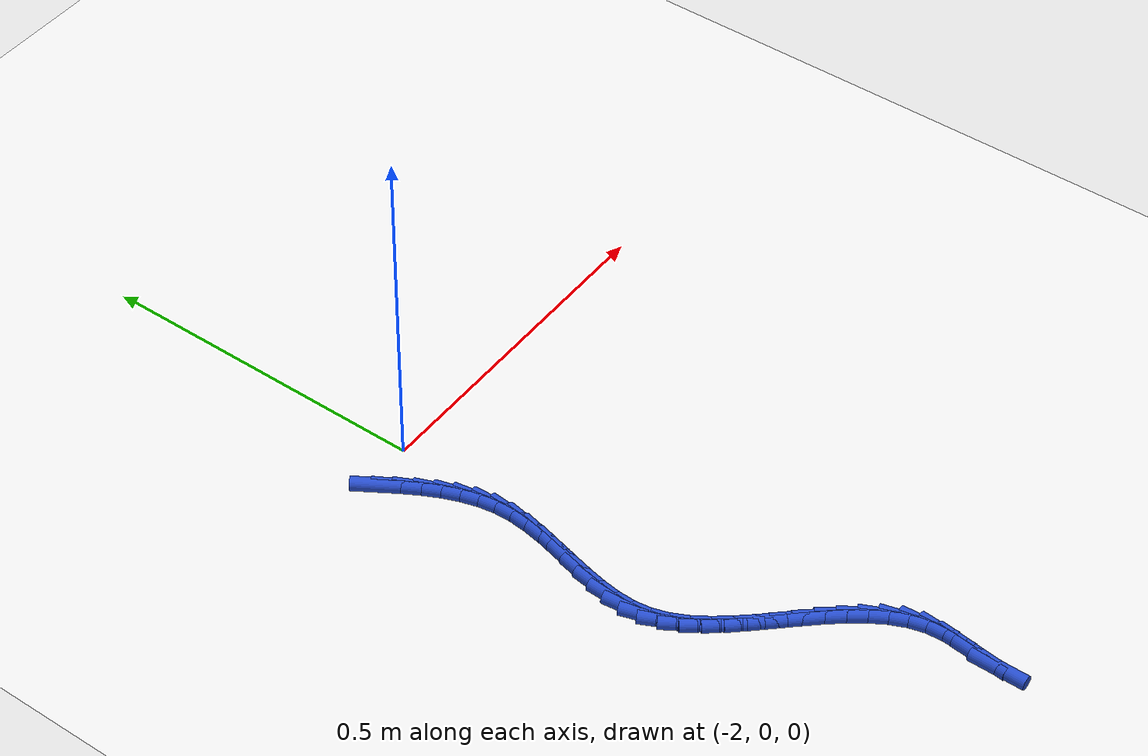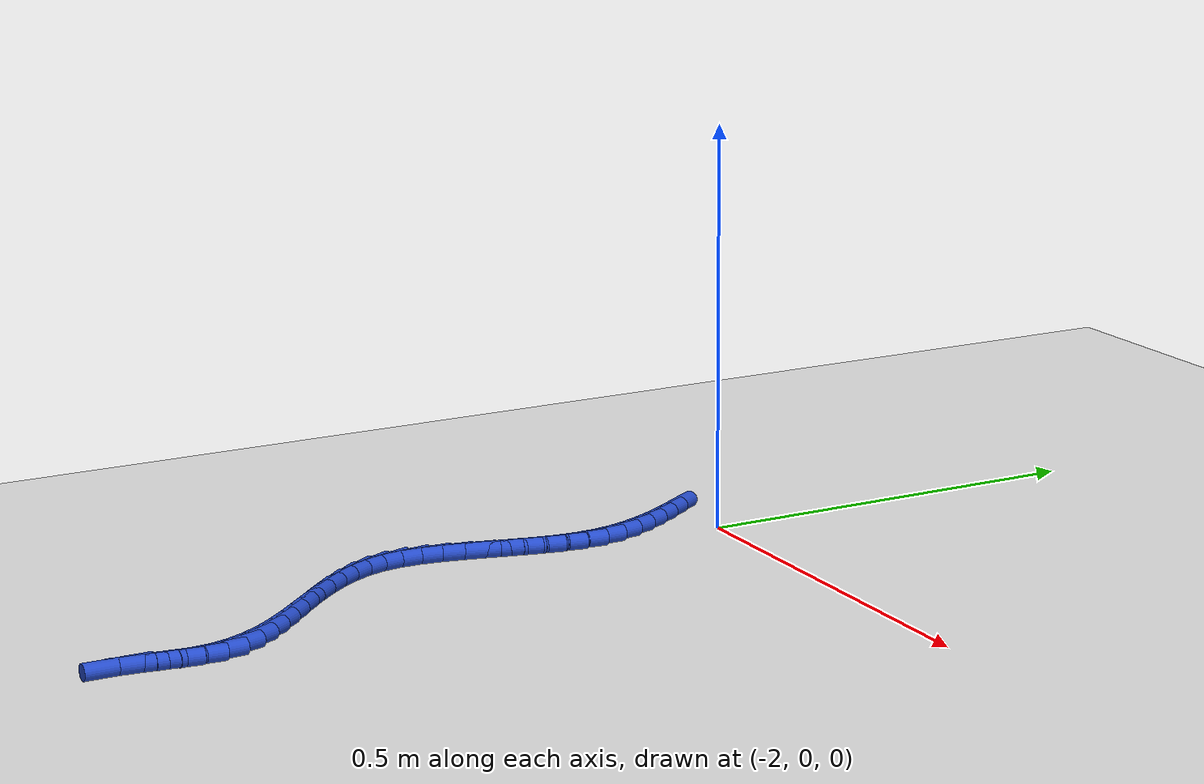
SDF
<sdf version="1.6">
 <world name="default">
  <model name="ground_plane">
   <static>1</static>
   <link name="link">
    <collision name="collision">
     <geometry><plane><normal>0 0 1</normal><size>100 100</size></plane></geometry>
     <surface><friction><ode><mu>100</mu><mu2>50</mu2></ode></friction></surface>
    </collision>
    <visual name="visual">
     <cast_shadows>0</cast_shadows>
     <geometry><plane><normal>0 0 1</normal><size>100 100</size></plane></geometry>
     <material>
      <script><uri>file://media/materials/scripts/gazebo.material</uri><name>Gazebo/WhiteGlow</name></script>
     </material>
    </visual>
   </link>
  </model>
  <model name="line">
   <link name="link_135">
    <pose>-2.072716898171378 -0.01903713610280499 0.01 0 1.57 -1.0054330299117158</pose>
    <collision name="collision">
     <geometry><cylinder><radius>0.01</radius><length>0.08</length></cylinder></geometry>
    </collision>
    <visual name="visual">
     <material>
      <script><name>Gazebo/Blue</name><uri>file://media/materials/scripts/gazebo.material</uri></script>
     </material>
     <geometry><cylinder><radius>0.01</radius><length>0.08</length></cylinder></geometry>
    </visual>
   </link>
   <link name="link_136">
    <pose>-2.057754793030776 -0.042620072217774814 0.01 0 1.57 -1.0477233923292828</pose>
    <collision name="collision">
     <geometry><cylinder><radius>0.01</radius><length>0.08</length></cylinder></geometry>
    </collision>
    <visual name="visual">
     <material>
      <script><name>Gazebo/Blue</name><uri>file://media/materials/scripts/gazebo.material</uri></script>
     </material>
     <geometry><cylinder><radius>0.01</radius><length>0.08</length></cylinder></geometry>
    </visual>
   </link>
   <link name="link_137">
    <pose>-2.044021600746991 -0.06643557124840849 0.01 0 1.57 -1.1080512836600593</pose>
    <collision name="collision">
     <geometry><cylinder><radius>0.01</radius><length>0.08</length></cylinder></geometry>
    </collision>
    <visual name="visual">
     <material>
      <script><name>Gazebo/Blue</name><uri>file://media/materials/scripts/gazebo.material</uri></script>
     </material>
     <geometry><cylinder><radius>0.01</radius><length>0.08</length></cylinder></geometry>
    </visual>
   </link>
   <link name="link_138">
    <pose>-2.0319880232883003 -0.09055712986771021 0.01 0 1.57 -1.188081776818659</pose>
    <collision name="collision">
     <geometry><cylinder><radius>0.01</radius><length>0.08</length></cylinder></geometry>
    </collision>
    <visual name="visual">
     <material>
      <script><name>Gazebo/Blue</name><uri>file://media/materials/scripts/gazebo.material</uri></script>
     </material>
     <geometry><cylinder><radius>0.01</radius><length>0.08</length></cylinder></geometry>
    </visual>
   </link>
   <link name="link_139">
    <pose>-2.0221247626229815 -0.11505824474868123 0.01 0 1.57 -1.289073747721306</pose>
    <collision name="collision">
     <geometry><cylinder><radius>0.01</radius><length>0.08</length></cylinder></geometry>
    </collision>
    <visual name="visual">
     <material>
      <script><name>Gazebo/Blue</name><uri>file://media/materials/scripts/gazebo.material</uri></script>
     </material>
     <geometry><cylinder><radius>0.01</radius><length>0.08</length></cylinder></geometry>
    </visual>
   </link>
   <link name="link_140">
    <pose>-2.0149025207193128 -0.14001241256432498 0.01 0 1.57 -1.4108553559786603</pose>
    <collision name="collision">
     <geometry><cylinder><radius>0.01</radius><length>0.08</length></cylinder></geometry>
    </collision>
    <visual name="visual">
     <material>
      <script><name>Gazebo/Blue</name><uri>file://media/materials/scripts/gazebo.material</uri></script>
     </material>
     <geometry><cylinder><radius>0.01</radius><length>0.08</length></cylinder></geometry>
    </visual>
   </link>
   <link name="link_141">
    <pose>-2.010791999545571 -0.16549312998764493 0.01 0 1.57 -1.5485861318909557</pose>
    <collision name="collision">
     <geometry><cylinder><radius>0.01</radius><length>0.08</length></cylinder></geometry>
    </collision>
    <visual name="visual">
     <material>
      <script><name>Gazebo/Blue</name><uri>file://media/materials/scripts/gazebo.material</uri></script>
     </material>
     <geometry><cylinder><radius>0.01</radius><length>0.08</length></cylinder></geometry>
    </visual>
   </link>
   <link name="link_142">
    <pose>-2.010212849089944 -0.19156472570114025 0.01 0 1.57 1.4719913664019857</pose>
    <collision name="collision">
     <geometry><cylinder><radius>0.01</radius><length>0.08</length></cylinder></geometry>
    </collision>
    <visual name="visual">
     <material>
      <script><name>Gazebo/Blue</name><uri>file://media/materials/scripts/gazebo.material</uri></script>
     </material>
     <geometry><cylinder><radius>0.01</radius><length>0.08</length></cylinder></geometry>
    </visual>
   </link>
   <link name="link_143">
    <pose>-2.0128491220597575 -0.21815942873373748 0.01 0 1.57 1.3879470591012573</pose>
    <collision name="collision">
     <geometry><cylinder><radius>0.01</radius><length>0.08</length></cylinder></geometry>
    </collision>
    <visual name="visual">
     <material>
      <script><name>Gazebo/Blue</name><uri>file://media/materials/scripts/gazebo.material</uri></script>
     </material>
     <geometry><cylinder><radius>0.01</radius><length>0.08</length></cylinder></geometry>
    </visual>
   </link>
   <link name="link_144">
    <pose>-2.017832736541385 -0.24511031495807142 0.01 0 1.57 1.337468236158817</pose>
    <collision name="collision">
     <geometry><cylinder><radius>0.01</radius><length>0.08</length></cylinder></geometry>
    </collision>
    <visual name="visual">
     <material>
      <script><name>Gazebo/Blue</name><uri>file://media/materials/scripts/gazebo.material</uri></script>
     </material>
     <geometry><cylinder><radius>0.01</radius><length>0.08</length></cylinder></geometry>
    </visual>
   </link>
   <link name="link_145">
    <pose>-2.024282200495106 -0.2722480520363942 0.01 0 1.57 1.3173441189196604</pose>
    <collision name="collision">
     <geometry><cylinder><radius>0.01</radius><length>0.08</length></cylinder></geometry>
    </collision>
    <visual name="visual">
     <material>
      <script><name>Gazebo/Blue</name><uri>file://media/materials/scripts/gazebo.material</uri></script>
     </material>
     <geometry><cylinder><radius>0.01</radius><length>0.08</length></cylinder></geometry>
    </visual>
   </link>
   <link name="link_146">
    <pose>-2.0313160218811994 -0.2994033076309544 0.01 0 1.57 1.3263117327680018</pose>
    <collision name="collision">
     <geometry><cylinder><radius>0.01</radius><length>0.08</length></cylinder></geometry>
    </collision>
    <visual name="visual">
     <material>
      <script><name>Gazebo/Blue</name><uri>file://media/materials/scripts/gazebo.material</uri></script>
     </material>
     <geometry><cylinder><radius>0.01</radius><length>0.08</length></cylinder></geometry>
    </visual>
   </link>
   <link name="link_147">
    <pose>-2.0380527086599423 -0.326406749404004 0.01 0 1.57 1.3654279292885447</pose>
    <collision name="collision">
     <geometry><cylinder><radius>0.01</radius><length>0.08</length></cylinder></geometry>
    </collision>
    <visual name="visual">
     <material>
      <script><name>Gazebo/Blue</name><uri>file://media/materials/scripts/gazebo.material</uri></script>
     </material>
     <geometry><cylinder><radius>0.01</radius><length>0.08</length></cylinder></geometry>
    </visual>
   </link>
   <link name="link_148">
    <pose>-2.0436107687916136 -0.35308904501779176 0.01 0 1.57 1.4380310080998988</pose>
    <collision name="collision">
     <geometry><cylinder><radius>0.01</radius><length>0.08</length></cylinder></geometry>
    </collision>
    <visual name="visual">
     <material>
      <script><name>Gazebo/Blue</name><uri>file://media/materials/scripts/gazebo.material</uri></script>
     </material>
     <geometry><cylinder><radius>0.01</radius><length>0.08</length></cylinder></geometry>
    </visual>
   </link>
   <link name="link_149">
    <pose>-2.0471087102364915 -0.37928086213456974 0.01 0 1.57 1.5490102324462334</pose>
    <collision name="collision">
     <geometry><cylinder><radius>0.01</radius><length>0.08</length></cylinder></geometry>
    </collision>
    <visual name="visual">
     <material>
      <script><name>Gazebo/Blue</name><uri>file://media/materials/scripts/gazebo.material</uri></script>
     </material>
     <geometry><cylinder><radius>0.01</radius><length>0.08</length></cylinder></geometry>
    </visual>
   </link>
   <link name="link_150">
    <pose>-2.047665040954855 -0.40481286841658654 0.01 0 1.57 -1.439319601535702</pose>
    <collision name="collision">
     <geometry><cylinder><radius>0.01</radius><length>0.08</length></cylinder></geometry>
    </collision>
    <visual name="visual">
     <material>
      <script><name>Gazebo/Blue</name><uri>file://media/materials/scripts/gazebo.material</uri></script>
     </material>
     <geometry><cylinder><radius>0.01</radius><length>0.08</length></cylinder></geometry>
    </visual>
   </link>
   <link name="link_151">
    <pose>-2.044398342859905 -0.4295157464807639 0.01 0 1.57 -1.2594936511124182</pose>
    <collision name="collision">
     <geometry><cylinder><radius>0.01</radius><length>0.08</length></cylinder></geometry>
    </collision>
    <visual name="visual">
     <material>
      <script><name>Gazebo/Blue</name><uri>file://media/materials/scripts/gazebo.material</uri></script>
     </material>
     <geometry><cylinder><radius>0.01</radius><length>0.08</length></cylinder></geometry>
    </visual>
   </link>
   <link name="link_152">
    <pose>-2.0367500896820774 -0.4532854737356481 0.01 0 1.57 -1.1053584522269329</pose>
    <collision name="collision">
     <geometry><cylinder><radius>0.01</radius><length>0.08</length></cylinder></geometry>
    </collision>
    <visual name="visual">
     <material>
      <script><name>Gazebo/Blue</name><uri>file://media/materials/scripts/gazebo.material</uri></script>
     </material>
     <geometry><cylinder><radius>0.01</radius><length>0.08</length></cylinder></geometry>
    </visual>
   </link>
   <link name="link_153">
    <pose>-2.025224918172634 -0.47623301912627464 0.01 0 1.57 -0.9882424755647025</pose>
    <collision name="collision">
     <geometry><cylinder><radius>0.01</radius><length>0.08</length></cylinder></geometry>
    </collision>
    <visual name="visual">
     <material>
      <script><name>Gazebo/Blue</name><uri>file://media/materials/scripts/gazebo.material</uri></script>
     </material>
     <geometry><cylinder><radius>0.01</radius><length>0.08</length></cylinder></geometry>
    </visual>
   </link>
   <link name="link_154">
    <pose>-2.010545964181254 -0.49851353622033273 0.01 0 1.57 -0.9046661399451157</pose>
    <collision name="collision">
     <geometry><cylinder><radius>0.01</radius><length>0.08</length></cylinder></geometry>
    </collision>
    <visual name="visual">
     <material>
      <script><name>Gazebo/Blue</name><uri>file://media/materials/scripts/gazebo.material</uri></script>
     </material>
     <geometry><cylinder><radius>0.01</radius><length>0.08</length></cylinder></geometry>
    </visual>
   </link>
   <link name="link_155">
    <pose>-1.9934363635576156 -0.5202821785855081 0.01 0 1.57 -0.8498098613659089</pose>
    <collision name="collision">
     <geometry><cylinder><radius>0.01</radius><length>0.08</length></cylinder></geometry>
    </collision>
    <visual name="visual">
     <material>
      <script><name>Gazebo/Blue</name><uri>file://media/materials/scripts/gazebo.material</uri></script>
     </material>
     <geometry><cylinder><radius>0.01</radius><length>0.08</length></cylinder></geometry>
    </visual>
   </link>
   <link name="link_156">
    <pose>-1.9746192521513979 -0.5416940997894899 0.01 0 1.57 -0.8197373556921551</pose>
    <collision name="collision">
     <geometry><cylinder><radius>0.01</radius><length>0.08</length></cylinder></geometry>
    </collision>
    <visual name="visual">
     <material>
      <script><name>Gazebo/Blue</name><uri>file://media/materials/scripts/gazebo.material</uri></script>
     </material>
     <geometry><cylinder><radius>0.01</radius><length>0.08</length></cylinder></geometry>
    </visual>
   </link>
   <link name="link_157">
    <pose>-1.9548177658122798 -0.5629044533999641 0.01 0 1.57 -0.8121030247501967</pose>
    <collision name="collision">
     <geometry><cylinder><radius>0.01</radius><length>0.08</length></cylinder></geometry>
    </collision>
    <visual name="visual">
     <material>
      <script><name>Gazebo/Blue</name><uri>file://media/materials/scripts/gazebo.material</uri></script>
     </material>
     <geometry><cylinder><radius>0.01</radius><length>0.08</length></cylinder></geometry>
    </visual>
   </link>
   <link name="link_158">
    <pose>-1.9347550403899396 -0.5840683929846193 0.01 0 1.57 -0.8262784090241238</pose>
    <collision name="collision">
     <geometry><cylinder><radius>0.01</radius><length>0.08</length></cylinder></geometry>
    </collision>
    <visual name="visual">
     <material>
      <script><name>Gazebo/Blue</name><uri>file://media/materials/scripts/gazebo.material</uri></script>
     </material>
     <geometry><cylinder><radius>0.01</radius><length>0.08</length></cylinder></geometry>
    </visual>
   </link>
   <link name="link_159">
    <pose>-1.9151542117340579 -0.6053410721111423 0.01 0 1.57 -0.8633522941694679</pose>
    <collision name="collision">
     <geometry><cylinder><radius>0.01</radius><length>0.08</length></cylinder></geometry>
    </collision>
    <visual name="visual">
     <material>
      <script><name>Gazebo/Blue</name><uri>file://media/materials/scripts/gazebo.material</uri></script>
     </material>
     <geometry><cylinder><radius>0.01</radius><length>0.08</length></cylinder></geometry>
    </visual>
   </link>
   <link name="link_160">
    <pose>-1.896738415694311 -0.6268776443472204 0.01 0 1.57 -0.9261036707936082</pose>
    <collision name="collision">
     <geometry><cylinder><radius>0.01</radius><length>0.08</length></cylinder></geometry>
    </collision>
    <visual name="visual">
     <material>
      <script><name>Gazebo/Blue</name><uri>file://media/materials/scripts/gazebo.material</uri></script>
     </material>
     <geometry><cylinder><radius>0.01</radius><length>0.08</length></cylinder></geometry>
    </visual>
   </link>
   <link name="link_161">
    <pose>-1.8802307881203806 -0.6488332632605426 0.01 0 1.57 -1.0187609289218393</pose>
    <collision name="collision">
     <geometry><cylinder><radius>0.01</radius><length>0.08</length></cylinder></geometry>
    </collision>
    <visual name="visual">
     <material>
      <script><name>Gazebo/Blue</name><uri>file://media/materials/scripts/gazebo.material</uri></script>
     </material>
     <geometry><cylinder><radius>0.01</radius><length>0.08</length></cylinder></geometry>
    </visual>
   </link>
   <link name="link_162">
    <pose>-1.866354464861943 -0.6713630824187944 0.01 0 1.57 -1.145968579685223</pose>
    <collision name="collision">
     <geometry><cylinder><radius>0.01</radius><length>0.08</length></cylinder></geometry>
    </collision>
    <visual name="visual">
     <material>
      <script><name>Gazebo/Blue</name><uri>file://media/materials/scripts/gazebo.material</uri></script>
     </material>
     <geometry><cylinder><radius>0.01</radius><length>0.08</length></cylinder></geometry>
    </visual>
   </link>
   <link name="link_163">
    <pose>-1.8558325817686785 -0.6946222553896647 0.01 0 1.57 -1.3099622329208471</pose>
    <collision name="collision">
     <geometry><cylinder><radius>0.01</radius><length>0.08</length></cylinder></geometry>
    </collision>
    <visual name="visual">
     <material>
      <script><name>Gazebo/Blue</name><uri>file://media/materials/scripts/gazebo.material</uri></script>
     </material>
     <geometry><cylinder><radius>0.01</radius><length>0.08</length></cylinder></geometry>
    </visual>
   </link>
   <link name="link_164">
    <pose>-1.849388274690266 -0.7187659357408398 0.01 0 1.57 -1.501490452390876</pose>
    <collision name="collision">
     <geometry><cylinder><radius>0.01</radius><length>0.08</length></cylinder></geometry>
    </collision>
    <visual name="visual">
     <material>
      <script><name>Gazebo/Blue</name><uri>file://media/materials/scripts/gazebo.material</uri></script>
     </material>
     <geometry><cylinder><radius>0.01</radius><length>0.08</length></cylinder></geometry>
    </visual>
   </link>
   <link name="link_165">
    <pose>-1.8476411810050841 -0.7439340117497872 0.01 0 1.57 1.4944807611525492</pose>
    <collision name="collision">
     <geometry><cylinder><radius>0.01</radius><length>0.08</length></cylinder></geometry>
    </collision>
    <visual name="visual">
     <material>
      <script><name>Gazebo/Blue</name><uri>file://media/materials/scripts/gazebo.material</uri></script>
     </material>
     <geometry><cylinder><radius>0.01</radius><length>0.08</length></cylinder></geometry>
    </visual>
   </link>
   <link name="link_166">
    <pose>-1.8496369085869981 -0.770034213509393 0.01 0 1.57 1.4385595268970477</pose>
    <collision name="collision">
     <geometry><cylinder><radius>0.01</radius><length>0.08</length></cylinder></geometry>
    </collision>
    <visual name="visual">
     <material>
      <script><name>Gazebo/Blue</name><uri>file://media/materials/scripts/gazebo.material</uri></script>
     </material>
     <geometry><cylinder><radius>0.01</radius><length>0.08</length></cylinder></geometry>
    </visual>
   </link>
   <link name="link_167">
    <pose>-1.8531962581331738 -0.7967936207436789 0.01 0 1.57 1.4639316382636816</pose>
    <collision name="collision">
     <geometry><cylinder><radius>0.01</radius><length>0.08</length></cylinder></geometry>
    </collision>
    <visual name="visual">
     <material>
      <script><name>Gazebo/Blue</name><uri>file://media/materials/scripts/gazebo.material</uri></script>
     </material>
     <geometry><cylinder><radius>0.01</radius><length>0.08</length></cylinder></geometry>
    </visual>
   </link>
   <link name="link_168">
    <pose>-1.856107757027867 -0.8239345530919786 0.01 0 1.57 1.5688812601569817</pose>
    <collision name="collision">
     <geometry><cylinder><radius>0.01</radius><length>0.08</length></cylinder></geometry>
    </collision>
    <visual name="visual">
     <material>
      <script><name>Gazebo/Blue</name><uri>file://media/materials/scripts/gazebo.material</uri></script>
     </material>
     <geometry><cylinder><radius>0.01</radius><length>0.08</length></cylinder></geometry>
    </visual>
   </link>
  </model>
 </world>
</sdf>
